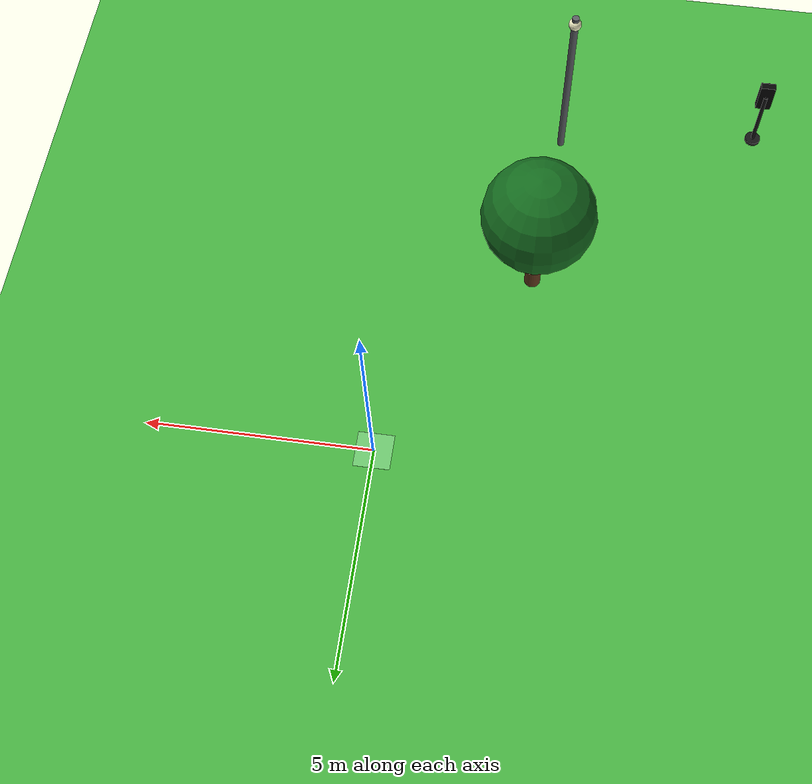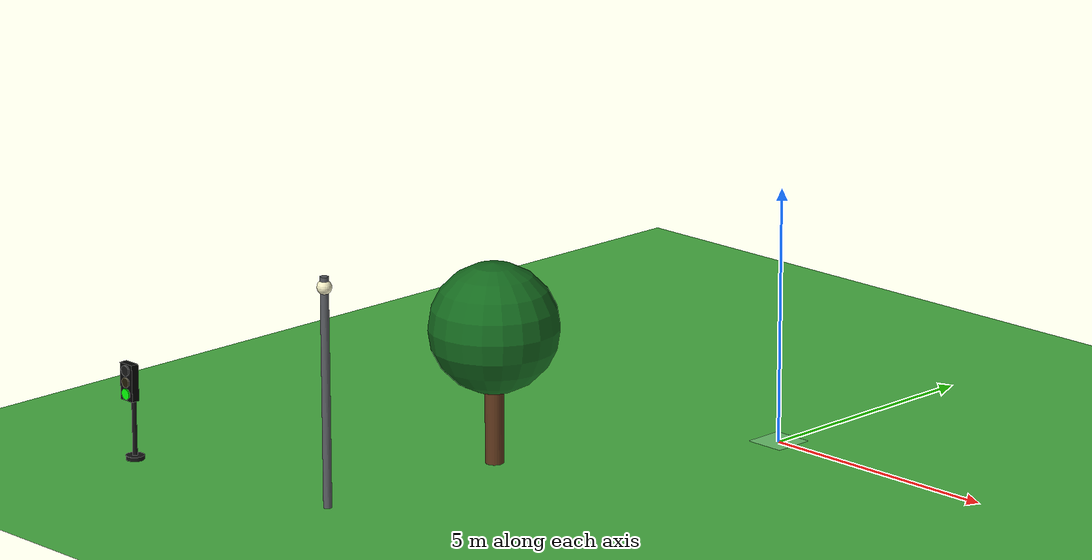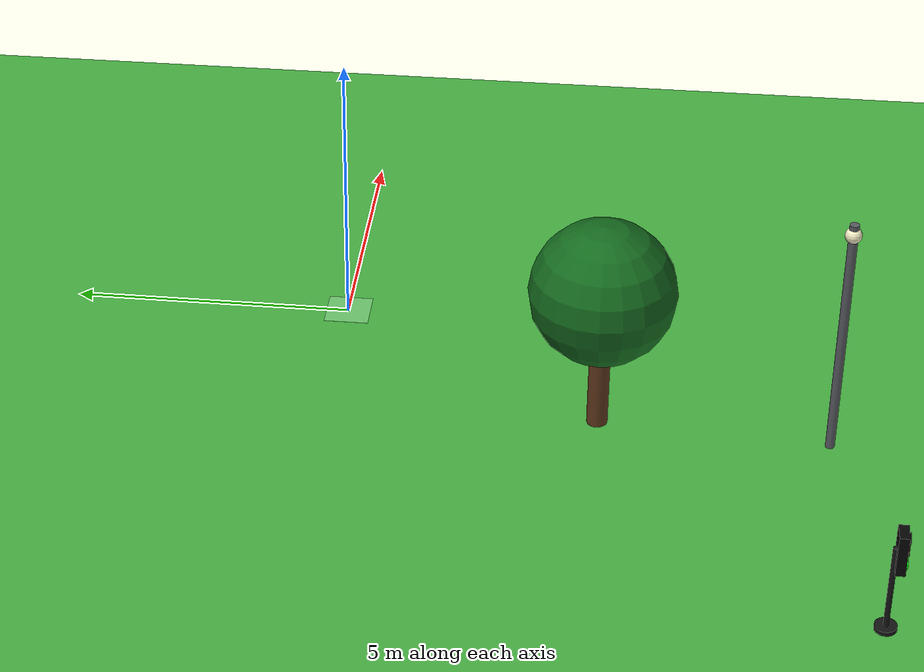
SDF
<sdf version="1.10">
 <world name="city_second">
  <model name="ground_plane">
   <static>true</static>
   <link name="link">
    <collision name="collision">
     <geometry><plane><normal>0 0 1</normal><size>300 300</size></plane></geometry>
    </collision>
    <visual name="visual">
     <geometry><plane><normal>0 0 1</normal><size>300 300</size></plane></geometry>
     <material>
      <ambient>0.280000001 0.689999998 0.25999999 1</ambient>
      <diffuse>0.280000001 0.689999998 0.25999999 1</diffuse>
      <specular>0.0299999993 0.0299999993 0.0299999993 1</specular>
     </material>
    </visual>
    <inertial>
     <mass>1</mass>
     <inertia><ixx>1</ixx><ixy>0</ixy><ixz>0</ixz><iyy>1</iyy><iyz>0</iyz><izz>1</izz></inertia>
    </inertial>
   </link>
  </model>
  <model name="robot_spawn_sidewalk_hint">
   <static>true</static>
   <pose>0 0 0.021000000000000001 0 0 0</pose>
   <link name="link">
    <visual name="visual">
     <geometry><box><size>0.80000000000000004 0.80000000000000004 0.0050000000000000001</size></box></geometry>
     <material>
      <ambient>0.550000012 0.860000014 0.569999993 0.649999976</ambient>
      <diffuse>0.550000012 0.860000014 0.569999993 0.649999976</diffuse>
      <specular>0 0 0 1</specular>
     </material>
     <transparency>0.34999999999999998</transparency>
    </visual>
    <inertial>
     <mass>1</mass>
     <inertia><ixx>1</ixx><ixy>0</ixy><ixz>0</ixz><iyy>1</iyy><iyz>0</iyz><izz>1</izz></inertia>
    </inertial>
   </link>
  </model>
  <model name="lamp_1_2_6">
   <static>true</static>
   <pose>-3.2090200000000002 -8.6416400000000007 2.2000000000000002 0 0 0</pose>
   <link name="link">
    <collision name="collision">
     <geometry>
      <cylinder><radius>0.080000000000000002</radius><length>4.4000000000000004</length></cylinder>
     </geometry>
    </collision>
    <visual name="pole">
     <geometry>
      <cylinder><radius>0.080000000000000002</radius><length>4.4000000000000004</length></cylinder>
     </geometry>
     <material>
      <ambient>0.349999994 0.360000014 0.379999995 1</ambient>
      <diffuse>0.349999994 0.360000014 0.379999995 1</diffuse>
      <specular>0.0299999993 0.0299999993 0.0299999993 1</specular>
     </material>
    </visual>
    <visual name="lamp_head">
     <pose>0 0 2 0 0 0</pose>
     <geometry><sphere><radius>0.14000000000000001</radius></sphere></geometry>
     <material>
      <ambient>0.959999979 0.939999998 0.779999971 1</ambient>
      <diffuse>0.959999979 0.939999998 0.779999971 1</diffuse>
      <specular>0.0299999993 0.0299999993 0.0299999993 1</specular>
     </material>
    </visual>
    <inertial>
     <mass>1</mass>
     <inertia><ixx>1</ixx><ixy>0</ixy><ixz>0</ixz><iyy>1</iyy><iyz>0</iyz><izz>1</izz></inertia>
    </inertial>
   </link>
  </model>
  <model name="Oak tree_4">
   <static>true</static>
   <pose>-2.92401 -4.6859599999999997 0 0 0 0</pose>
   <link name="link">
    <collision name="footprint">
     <pose>0 0 0.050000000000000003 0 0 0</pose>
     <geometry>
      <cylinder><radius>0.90000000000000002</radius><length>0.10000000000000001</length></cylinder>
     </geometry>
    </collision>
    <visual name="trunk">
     <pose>0 0 1.1000000000000001 0 0 0</pose>
     <geometry>
      <cylinder><radius>0.17999999999999999</radius><length>2.2000000000000002</length></cylinder>
     </geometry>
     <material>
      <ambient>0.379999995 0.219999999 0.109999999 1</ambient>
      <diffuse>0.379999995 0.219999999 0.109999999 1</diffuse>
      <specular>0.119999997 0.119999997 0.119999997 1</specular>
      <emissive>0 0 0 1</emissive>
     </material>
    </visual>
    <visual name="crown">
     <pose>0 0 2.6499999999999999 0 0 0</pose>
     <geometry><sphere><radius>1.25</radius></sphere></geometry>
     <material>
      <ambient>0.0799999982 0.419999987 0.119999997 1</ambient>
      <diffuse>0.0799999982 0.419999987 0.119999997 1</diffuse>
      <specular>0.119999997 0.119999997 0.119999997 1</specular>
      <emissive>0 0 0 1</emissive>
     </material>
    </visual>
    <inertial>
     <mass>1</mass>
     <inertia><ixx>1</ixx><ixy>0</ixy><ixz>0</ixz><iyy>1</iyy><iyz>0</iyz><izz>1</izz></inertia>
    </inertial>
   </link>
  </model>
  <model name="simple_traffic_light_green_south_1_1">
   <static>true</static>
   <pose>-7.8270611436073505 -9.3625744818050709 0 0 0 -3.1415900000000754</pose>
   <link name="base">
    <pose>0 0 0.040000000000000001 0 0 0</pose>
    <collision name="collision">
     <geometry>
      <cylinder><radius>0.17999999999999999</radius><length>0.080000000000000002</length></cylinder>
     </geometry>
    </collision>
    <visual name="visual">
     <geometry>
      <cylinder><radius>0.17999999999999999</radius><length>0.080000000000000002</length></cylinder>
     </geometry>
     <material>
      <ambient>0.0799999982 0.0799999982 0.0799999982 1</ambient>
      <diffuse>0.0799999982 0.0799999982 0.0799999982 1</diffuse>
      <specular>0.150000006 0.150000006 0.150000006 1</specular>
      <emissive>0 0 0 1</emissive>
     </material>
    </visual>
    <inertial>
     <mass>1</mass>
     <inertia><ixx>1</ixx><ixy>0</ixy><ixz>0</ixz><iyy>1</iyy><iyz>0</iyz><izz>1</izz></inertia>
    </inertial>
   </link>
   <link name="pole">
    <pose>0 -1.5987211554602254e-14 0.80000000000000104 0 0 0</pose>
    <collision name="collision">
     <geometry>
      <cylinder><radius>0.044999999999999998</radius><length>1.6000000000000001</length></cylinder>
     </geometry>
    </collision>
    <visual name="visual">
     <geometry>
      <cylinder><radius>0.044999999999999998</radius><length>1.6000000000000001</length></cylinder>
     </geometry>
     <material>
      <ambient>0.0799999982 0.0799999982 0.0799999982 1</ambient>
      <diffuse>0.0799999982 0.0799999982 0.0799999982 1</diffuse>
      <specular>0.150000006 0.150000006 0.150000006 1</specular>
      <emissive>0 0 0 1</emissive>
     </material>
    </visual>
    <inertial>
     <mass>1</mass>
     <inertia><ixx>1</ixx><ixy>0</ixy><ixz>0</ixz><iyy>1</iyy><iyz>0</iyz><izz>1</izz></inertia>
    </inertial>
   </link>
   <link name="signal_box">
    <pose>7.9936057773011271e-15 0.089999999999983871 1.550000000000002 0 0 0</pose>
    <collision name="collision">
     <geometry><box><size>0.34000000000000002 0.16 0.71999999999999997</size></box></geometry>
    </collision>
    <visual name="visual">
     <geometry><box><size>0.34000000000000002 0.16 0.71999999999999997</size></box></geometry>
     <material>
      <ambient>0.0199999996 0.0199999996 0.0199999996 1</ambient>
      <diffuse>0.0199999996 0.0199999996 0.0199999996 1</diffuse>
      <specular>0.150000006 0.150000006 0.150000006 1</specular>
      <emissive>0 0 0 1</emissive>
     </material>
    </visual>
    <inertial>
     <mass>1</mass>
     <inertia><ixx>1</ixx><ixy>0</ixy><ixz>0</ixz><iyy>1</iyy><iyz>0</iyz><izz>1</izz></inertia>
    </inertial>
   </link>
   <link name="red_lens">
    <pose>0 0.18099999999996896 1.78 1.5707963267999998 1.2475048931562623e-16 -1.2475078878636004e-16</pose>
    <collision name="collision">
     <geometry><cylinder><radius>0.105</radius><length>0.035000000000000003</length></cylinder></geometry>
    </collision>
    <visual name="visual">
     <geometry><cylinder><radius>0.105</radius><length>0.035000000000000003</length></cylinder></geometry>
     <material>
      <ambient>0.0799999982 0.0799999982 0.0799999982 1</ambient>
      <diffuse>0.0799999982 0.0799999982 0.0799999982 1</diffuse>
      <specular>0.150000006 0.150000006 0.150000006 1</specular>
      <emissive>0 0 0 1</emissive>
     </material>
    </visual>
    <inertial>
     <mass>1</mass>
     <inertia><ixx>1</ixx><ixy>0</ixy><ixz>0</ixz><iyy>1</iyy><iyz>0</iyz><izz>1</izz></inertia>
    </inertial>
   </link>
   <link name="yellow_lens">
    <pose>0 0.1819999999999844 1.550000000000002 1.5707963267999998 1.2475048931562623e-16 -1.2475078878636004e-16</pose>
    <collision name="collision">
     <geometry>
      <cylinder><radius>0.095000000000000001</radius><length>0.035000000000000003</length></cylinder>
     </geometry>
    </collision>
    <visual name="visual">
     <geometry>
      <cylinder><radius>0.095000000000000001</radius><length>0.035000000000000003</length></cylinder>
     </geometry>
     <material>
      <ambient>0.119999997 0.100000001 0.0199999996 1</ambient>
      <diffuse>0.119999997 0.100000001 0.0199999996 1</diffuse>
      <specular>0.150000006 0.150000006 0.150000006 1</specular>
      <emissive>0 0 0 1</emissive>
     </material>
    </visual>
    <inertial>
     <mass>1</mass>
     <inertia><ixx>1</ixx><ixy>0</ixy><ixz>0</ixz><iyy>1</iyy><iyz>0</iyz><izz>1</izz></inertia>
    </inertial>
   </link>
   <link name="green_lens">
    <pose>7.9936057773011271e-15 0.18299999999996786 1.3200000000000021 1.5707963267999998 1.2475048931562623e-16 -1.2475078878636004e-16</pose>
    <collision name="collision">
     <geometry><cylinder><radius>0.105</radius><length>0.035000000000000003</length></cylinder></geometry>
    </collision>
    <visual name="visual">
     <geometry><cylinder><radius>0.105</radius><length>0.035000000000000003</length></cylinder></geometry>
     <material>
      <ambient>0.0199999996 1 0.0199999996 1</ambient>
      <diffuse>0.0199999996 1 0.0199999996 1</diffuse>
      <specular>0.150000006 0.150000006 0.150000006 1</specular>
      <emissive>0.0199999996 1 0.0199999996 1</emissive>
     </material>
    </visual>
    <inertial>
     <mass>1</mass>
     <inertia><ixx>1</ixx><ixy>0</ixy><ixz>0</ixz><iyy>1</iyy><iyz>0</iyz><izz>1</izz></inertia>
    </inertial>
   </link>
  </model>
 </world>
</sdf>
